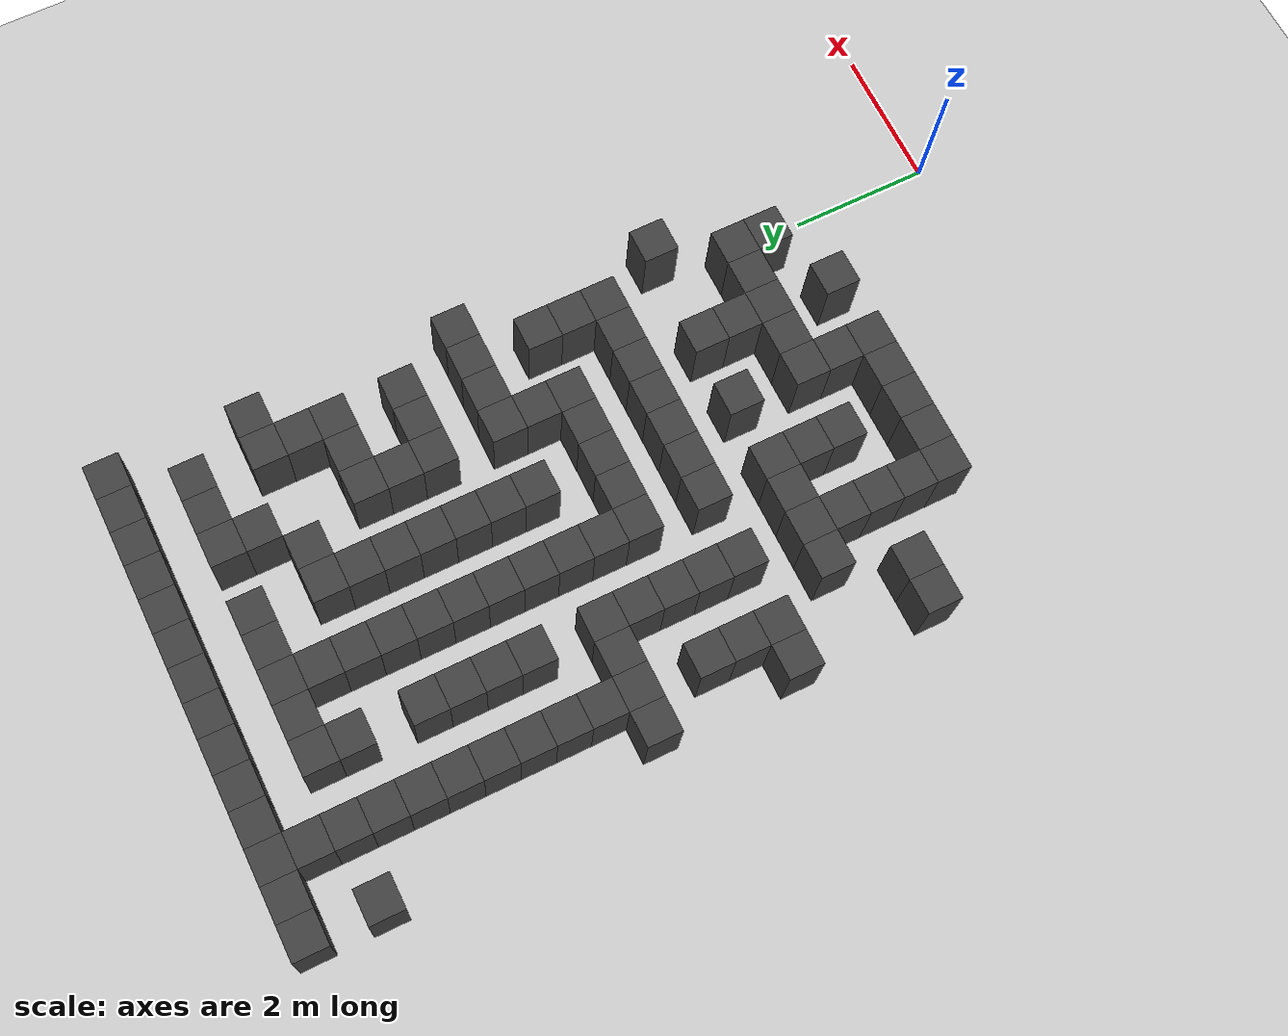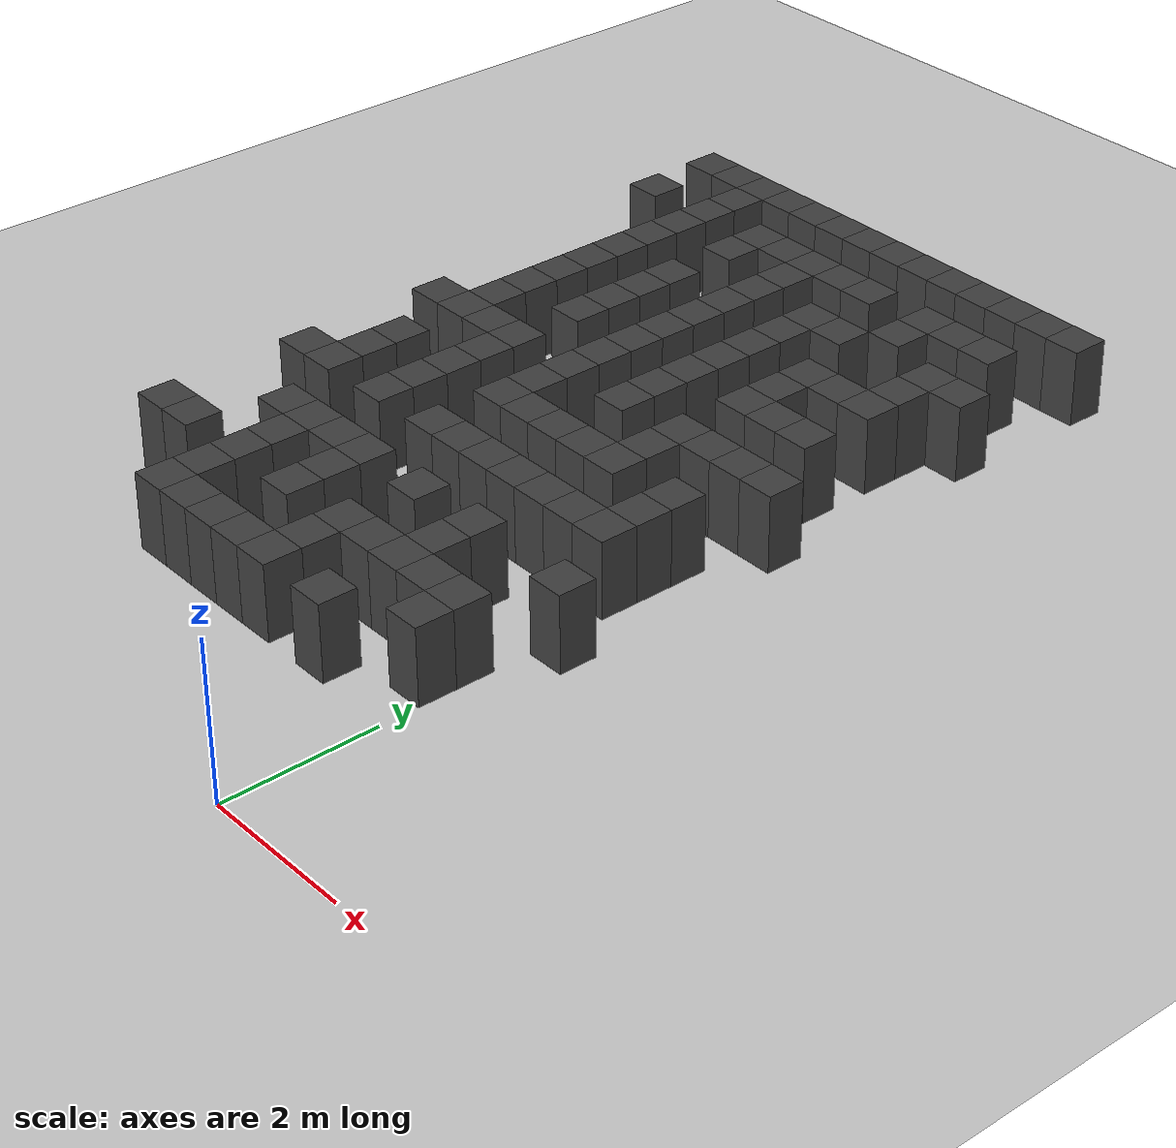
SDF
<sdf version="1.7">
 <world name="map_16603">
  <model name="ground_plane">
   <static>true</static>
   <link name="link">
    <collision name="collision">
     <geometry><plane><normal>0 0 1</normal><size>200 200</size></plane></geometry>
    </collision>
    <visual name="visual">
     <geometry><plane><normal>0 0 1</normal><size>200 200</size></plane></geometry>
     <material><ambient>0.8 0.8 0.8 1</ambient><diffuse>0.8 0.8 0.8 1</diffuse></material>
    </visual>
   </link>
  </model>
  <model name="maze_environment">
   <static>true</static>
   <link name="wall_12">
    <pose>-6.250 12.250 0.500 0 0 0</pose>
    <collision name="col"><geometry><box><size>0.5 0.5 1.0</size></box></geometry></collision>
    <visual name="vis">
     <geometry><box><size>0.5 0.5 1.0</size></box></geometry>
     <material><ambient>0.15 0.15 0.15 1</ambient><diffuse>0.25 0.25 0.25 1</diffuse></material>
    </visual>
   </link>
   <link name="wall_13">
    <pose>-5.750 12.250 0.500 0 0 0</pose>
    <collision name="col"><geometry><box><size>0.5 0.5 1.0</size></box></geometry></collision>
    <visual name="vis">
     <geometry><box><size>0.5 0.5 1.0</size></box></geometry>
     <material><ambient>0.15 0.15 0.15 1</ambient><diffuse>0.25 0.25 0.25 1</diffuse></material>
    </visual>
   </link>
   <link name="wall_14">
    <pose>-5.250 12.250 0.500 0 0 0</pose>
    <collision name="col"><geometry><box><size>0.5 0.5 1.0</size></box></geometry></collision>
    <visual name="vis">
     <geometry><box><size>0.5 0.5 1.0</size></box></geometry>
     <material><ambient>0.15 0.15 0.15 1</ambient><diffuse>0.25 0.25 0.25 1</diffuse></material>
    </visual>
   </link>
   <link name="wall_15">
    <pose>-4.750 12.250 0.500 0 0 0</pose>
    <collision name="col"><geometry><box><size>0.5 0.5 1.0</size></box></geometry></collision>
    <visual name="vis">
     <geometry><box><size>0.5 0.5 1.0</size></box></geometry>
     <material><ambient>0.15 0.15 0.15 1</ambient><diffuse>0.25 0.25 0.25 1</diffuse></material>
    </visual>
   </link>
   <link name="wall_16">
    <pose>-4.250 12.250 0.500 0 0 0</pose>
    <collision name="col"><geometry><box><size>0.5 0.5 1.0</size></box></geometry></collision>
    <visual name="vis">
     <geometry><box><size>0.5 0.5 1.0</size></box></geometry>
     <material><ambient>0.15 0.15 0.15 1</ambient><diffuse>0.25 0.25 0.25 1</diffuse></material>
    </visual>
   </link>
   <link name="wall_17">
    <pose>-3.750 12.250 0.500 0 0 0</pose>
    <collision name="col"><geometry><box><size>0.5 0.5 1.0</size></box></geometry></collision>
    <visual name="vis">
     <geometry><box><size>0.5 0.5 1.0</size></box></geometry>
     <material><ambient>0.15 0.15 0.15 1</ambient><diffuse>0.25 0.25 0.25 1</diffuse></material>
    </visual>
   </link>
   <link name="wall_18">
    <pose>-3.250 12.250 0.500 0 0 0</pose>
    <collision name="col"><geometry><box><size>0.5 0.5 1.0</size></box></geometry></collision>
    <visual name="vis">
     <geometry><box><size>0.5 0.5 1.0</size></box></geometry>
     <material><ambient>0.15 0.15 0.15 1</ambient><diffuse>0.25 0.25 0.25 1</diffuse></material>
    </visual>
   </link>
   <link name="wall_19">
    <pose>-2.750 12.250 0.500 0 0 0</pose>
    <collision name="col"><geometry><box><size>0.5 0.5 1.0</size></box></geometry></collision>
    <visual name="vis">
     <geometry><box><size>0.5 0.5 1.0</size></box></geometry>
     <material><ambient>0.15 0.15 0.15 1</ambient><diffuse>0.25 0.25 0.25 1</diffuse></material>
    </visual>
   </link>
   <link name="wall_20">
    <pose>-2.250 12.250 0.500 0 0 0</pose>
    <collision name="col"><geometry><box><size>0.5 0.5 1.0</size></box></geometry></collision>
    <visual name="vis">
     <geometry><box><size>0.5 0.5 1.0</size></box></geometry>
     <material><ambient>0.15 0.15 0.15 1</ambient><diffuse>0.25 0.25 0.25 1</diffuse></material>
    </visual>
   </link>
   <link name="wall_21">
    <pose>-1.750 12.250 0.500 0 0 0</pose>
    <collision name="col"><geometry><box><size>0.5 0.5 1.0</size></box></geometry></collision>
    <visual name="vis">
     <geometry><box><size>0.5 0.5 1.0</size></box></geometry>
     <material><ambient>0.15 0.15 0.15 1</ambient><diffuse>0.25 0.25 0.25 1</diffuse></material>
    </visual>
   </link>
   <link name="wall_22">
    <pose>-1.250 12.250 0.500 0 0 0</pose>
    <collision name="col"><geometry><box><size>0.5 0.5 1.0</size></box></geometry></collision>
    <visual name="vis">
     <geometry><box><size>0.5 0.5 1.0</size></box></geometry>
     <material><ambient>0.15 0.15 0.15 1</ambient><diffuse>0.25 0.25 0.25 1</diffuse></material>
    </visual>
   </link>
   <link name="wall_23">
    <pose>-0.750 12.250 0.500 0 0 0</pose>
    <collision name="col"><geometry><box><size>0.5 0.5 1.0</size></box></geometry></collision>
    <visual name="vis">
     <geometry><box><size>0.5 0.5 1.0</size></box></geometry>
     <material><ambient>0.15 0.15 0.15 1</ambient><diffuse>0.25 0.25 0.25 1</diffuse></material>
    </visual>
   </link>
   <link name="wall_24">
    <pose>-0.250 12.250 0.500 0 0 0</pose>
    <collision name="col"><geometry><box><size>0.5 0.5 1.0</size></box></geometry></collision>
    <visual name="vis">
     <geometry><box><size>0.5 0.5 1.0</size></box></geometry>
     <material><ambient>0.15 0.15 0.15 1</ambient><diffuse>0.25 0.25 0.25 1</diffuse></material>
    </visual>
   </link>
   <link name="wall_25">
    <pose>0.250 12.250 0.500 0 0 0</pose>
    <collision name="col"><geometry><box><size>0.5 0.5 1.0</size></box></geometry></collision>
    <visual name="vis">
     <geometry><box><size>0.5 0.5 1.0</size></box></geometry>
     <material><ambient>0.15 0.15 0.15 1</ambient><diffuse>0.25 0.25 0.25 1</diffuse></material>
    </visual>
   </link>
   <link name="wall_53">
    <pose>-5.250 11.750 0.500 0 0 0</pose>
    <collision name="col"><geometry><box><size>0.5 0.5 1.0</size></box></geometry></collision>
    <visual name="vis">
     <geometry><box><size>0.5 0.5 1.0</size></box></geometry>
     <material><ambient>0.15 0.15 0.15 1</ambient><diffuse>0.25 0.25 0.25 1</diffuse></material>
    </visual>
   </link>
   <link name="wall_65">
    <pose>-6.250 11.250 0.500 0 0 0</pose>
    <collision name="col"><geometry><box><size>0.5 0.5 1.0</size></box></geometry></collision>
    <visual name="vis">
     <geometry><box><size>0.5 0.5 1.0</size></box></geometry>
     <material><ambient>0.15 0.15 0.15 1</ambient><diffuse>0.25 0.25 0.25 1</diffuse></material>
    </visual>
   </link>
   <link name="wall_66">
    <pose>-5.250 11.250 0.500 0 0 0</pose>
    <collision name="col"><geometry><box><size>0.5 0.5 1.0</size></box></geometry></collision>
    <visual name="vis">
     <geometry><box><size>0.5 0.5 1.0</size></box></geometry>
     <material><ambient>0.15 0.15 0.15 1</ambient><diffuse>0.25 0.25 0.25 1</diffuse></material>
    </visual>
   </link>
   <link name="wall_67">
    <pose>-4.250 11.250 0.500 0 0 0</pose>
    <collision name="col"><geometry><box><size>0.5 0.5 1.0</size></box></geometry></collision>
    <visual name="vis">
     <geometry><box><size>0.5 0.5 1.0</size></box></geometry>
     <material><ambient>0.15 0.15 0.15 1</ambient><diffuse>0.25 0.25 0.25 1</diffuse></material>
    </visual>
   </link>
   <link name="wall_68">
    <pose>-3.750 11.250 0.500 0 0 0</pose>
    <collision name="col"><geometry><box><size>0.5 0.5 1.0</size></box></geometry></collision>
    <visual name="vis">
     <geometry><box><size>0.5 0.5 1.0</size></box></geometry>
     <material><ambient>0.15 0.15 0.15 1</ambient><diffuse>0.25 0.25 0.25 1</diffuse></material>
    </visual>
   </link>
   <link name="wall_69">
    <pose>-3.250 11.250 0.500 0 0 0</pose>
    <collision name="col"><geometry><box><size>0.5 0.5 1.0</size></box></geometry></collision>
    <visual name="vis">
     <geometry><box><size>0.5 0.5 1.0</size></box></geometry>
     <material><ambient>0.15 0.15 0.15 1</ambient><diffuse>0.25 0.25 0.25 1</diffuse></material>
    </visual>
   </link>
   <link name="wall_70">
    <pose>-2.750 11.250 0.500 0 0 0</pose>
    <collision name="col"><geometry><box><size>0.5 0.5 1.0</size></box></geometry></collision>
    <visual name="vis">
     <geometry><box><size>0.5 0.5 1.0</size></box></geometry>
     <material><ambient>0.15 0.15 0.15 1</ambient><diffuse>0.25 0.25 0.25 1</diffuse></material>
    </visual>
   </link>
   <link name="wall_71">
    <pose>-2.250 11.250 0.500 0 0 0</pose>
    <collision name="col"><geometry><box><size>0.5 0.5 1.0</size></box></geometry></collision>
    <visual name="vis">
     <geometry><box><size>0.5 0.5 1.0</size></box></geometry>
     <material><ambient>0.15 0.15 0.15 1</ambient><diffuse>0.25 0.25 0.25 1</diffuse></material>
    </visual>
   </link>
   <link name="wall_72">
    <pose>-1.250 11.250 0.500 0 0 0</pose>
    <collision name="col"><geometry><box><size>0.5 0.5 1.0</size></box></geometry></collision>
    <visual name="vis">
     <geometry><box><size>0.5 0.5 1.0</size></box></geometry>
     <material><ambient>0.15 0.15 0.15 1</ambient><diffuse>0.25 0.25 0.25 1</diffuse></material>
    </visual>
   </link>
   <link name="wall_73">
    <pose>-0.750 11.250 0.500 0 0 0</pose>
    <collision name="col"><geometry><box><size>0.5 0.5 1.0</size></box></geometry></collision>
    <visual name="vis">
     <geometry><box><size>0.5 0.5 1.0</size></box></geometry>
     <material><ambient>0.15 0.15 0.15 1</ambient><diffuse>0.25 0.25 0.25 1</diffuse></material>
    </visual>
   </link>
   <link name="wall_74">
    <pose>-0.250 11.250 0.500 0 0 0</pose>
    <collision name="col"><geometry><box><size>0.5 0.5 1.0</size></box></geometry></collision>
    <visual name="vis">
     <geometry><box><size>0.5 0.5 1.0</size></box></geometry>
     <material><ambient>0.15 0.15 0.15 1</ambient><diffuse>0.25 0.25 0.25 1</diffuse></material>
    </visual>
   </link>
   <link name="wall_97">
    <pose>-5.250 10.750 0.500 0 0 0</pose>
    <collision name="col"><geometry><box><size>0.5 0.5 1.0</size></box></geometry></collision>
    <visual name="vis">
     <geometry><box><size>0.5 0.5 1.0</size></box></geometry>
     <material><ambient>0.15 0.15 0.15 1</ambient><diffuse>0.25 0.25 0.25 1</diffuse></material>
    </visual>
   </link>
   <link name="wall_98">
    <pose>-4.250 10.750 0.500 0 0 0</pose>
    <collision name="col"><geometry><box><size>0.5 0.5 1.0</size></box></geometry></collision>
    <visual name="vis">
     <geometry><box><size>0.5 0.5 1.0</size></box></geometry>
     <material><ambient>0.15 0.15 0.15 1</ambient><diffuse>0.25 0.25 0.25 1</diffuse></material>
    </visual>
   </link>
   <link name="wall_99">
    <pose>-3.250 10.750 0.500 0 0 0</pose>
    <collision name="col"><geometry><box><size>0.5 0.5 1.0</size></box></geometry></collision>
    <visual name="vis">
     <geometry><box><size>0.5 0.5 1.0</size></box></geometry>
     <material><ambient>0.15 0.15 0.15 1</ambient><diffuse>0.25 0.25 0.25 1</diffuse></material>
    </visual>
   </link>
   <link name="wall_100">
    <pose>-1.250 10.750 0.500 0 0 0</pose>
    <collision name="col"><geometry><box><size>0.5 0.5 1.0</size></box></geometry></collision>
    <visual name="vis">
     <geometry><box><size>0.5 0.5 1.0</size></box></geometry>
     <material><ambient>0.15 0.15 0.15 1</ambient><diffuse>0.25 0.25 0.25 1</diffuse></material>
    </visual>
   </link>
   <link name="wall_114">
    <pose>-5.250 10.250 0.500 0 0 0</pose>
    <collision name="col"><geometry><box><size>0.5 0.5 1.0</size></box></geometry></collision>
    <visual name="vis">
     <geometry><box><size>0.5 0.5 1.0</size></box></geometry>
     <material><ambient>0.15 0.15 0.15 1</ambient><diffuse>0.25 0.25 0.25 1</diffuse></material>
    </visual>
   </link>
   <link name="wall_115">
    <pose>-3.250 10.250 0.500 0 0 0</pose>
    <collision name="col"><geometry><box><size>0.5 0.5 1.0</size></box></geometry></collision>
    <visual name="vis">
     <geometry><box><size>0.5 0.5 1.0</size></box></geometry>
     <material><ambient>0.15 0.15 0.15 1</ambient><diffuse>0.25 0.25 0.25 1</diffuse></material>
    </visual>
   </link>
   <link name="wall_116">
    <pose>-2.250 10.250 0.500 0 0 0</pose>
    <collision name="col"><geometry><box><size>0.5 0.5 1.0</size></box></geometry></collision>
    <visual name="vis">
     <geometry><box><size>0.5 0.5 1.0</size></box></geometry>
     <material><ambient>0.15 0.15 0.15 1</ambient><diffuse>0.25 0.25 0.25 1</diffuse></material>
    </visual>
   </link>
   <link name="wall_117">
    <pose>-1.750 10.250 0.500 0 0 0</pose>
    <collision name="col"><geometry><box><size>0.5 0.5 1.0</size></box></geometry></collision>
    <visual name="vis">
     <geometry><box><size>0.5 0.5 1.0</size></box></geometry>
     <material><ambient>0.15 0.15 0.15 1</ambient><diffuse>0.25 0.25 0.25 1</diffuse></material>
    </visual>
   </link>
   <link name="wall_118">
    <pose>-0.250 10.250 0.500 0 0 0</pose>
    <collision name="col"><geometry><box><size>0.5 0.5 1.0</size></box></geometry></collision>
    <visual name="vis">
     <geometry><box><size>0.5 0.5 1.0</size></box></geometry>
     <material><ambient>0.15 0.15 0.15 1</ambient><diffuse>0.25 0.25 0.25 1</diffuse></material>
    </visual>
   </link>
   <link name="wall_119">
    <pose>0.250 10.250 0.500 0 0 0</pose>
    <collision name="col"><geometry><box><size>0.5 0.5 1.0</size></box></geometry></collision>
    <visual name="vis">
     <geometry><box><size>0.5 0.5 1.0</size></box></geometry>
     <material><ambient>0.15 0.15 0.15 1</ambient><diffuse>0.25 0.25 0.25 1</diffuse></material>
    </visual>
   </link>
   <link name="wall_141">
    <pose>-5.250 9.750 0.500 0 0 0</pose>
    <collision name="col"><geometry><box><size>0.5 0.5 1.0</size></box></geometry></collision>
    <visual name="vis">
     <geometry><box><size>0.5 0.5 1.0</size></box></geometry>
     <material><ambient>0.15 0.15 0.15 1</ambient><diffuse>0.25 0.25 0.25 1</diffuse></material>
    </visual>
   </link>
   <link name="wall_142">
    <pose>-4.250 9.750 0.500 0 0 0</pose>
    <collision name="col"><geometry><box><size>0.5 0.5 1.0</size></box></geometry></collision>
    <visual name="vis">
     <geometry><box><size>0.5 0.5 1.0</size></box></geometry>
     <material><ambient>0.15 0.15 0.15 1</ambient><diffuse>0.25 0.25 0.25 1</diffuse></material>
    </visual>
   </link>
   <link name="wall_143">
    <pose>-3.250 9.750 0.500 0 0 0</pose>
    <collision name="col"><geometry><box><size>0.5 0.5 1.0</size></box></geometry></collision>
    <visual name="vis">
     <geometry><box><size>0.5 0.5 1.0</size></box></geometry>
     <material><ambient>0.15 0.15 0.15 1</ambient><diffuse>0.25 0.25 0.25 1</diffuse></material>
    </visual>
   </link>
   <link name="wall_144">
    <pose>-2.250 9.750 0.500 0 0 0</pose>
    <collision name="col"><geometry><box><size>0.5 0.5 1.0</size></box></geometry></collision>
    <visual name="vis">
     <geometry><box><size>0.5 0.5 1.0</size></box></geometry>
     <material><ambient>0.15 0.15 0.15 1</ambient><diffuse>0.25 0.25 0.25 1</diffuse></material>
    </visual>
   </link>
   <link name="wall_145">
    <pose>-0.250 9.750 0.500 0 0 0</pose>
    <collision name="col"><geometry><box><size>0.5 0.5 1.0</size></box></geometry></collision>
    <visual name="vis">
     <geometry><box><size>0.5 0.5 1.0</size></box></geometry>
     <material><ambient>0.15 0.15 0.15 1</ambient><diffuse>0.25 0.25 0.25 1</diffuse></material>
    </visual>
   </link>
   <link name="wall_161">
    <pose>-5.250 9.250 0.500 0 0 0</pose>
    <collision name="col"><geometry><box><size>0.5 0.5 1.0</size></box></geometry></collision>
    <visual name="vis">
     <geometry><box><size>0.5 0.5 1.0</size></box></geometry>
     <material><ambient>0.15 0.15 0.15 1</ambient><diffuse>0.25 0.25 0.25 1</diffuse></material>
    </visual>
   </link>
   <link name="wall_162">
    <pose>-4.250 9.250 0.500 0 0 0</pose>
    <collision name="col"><geometry><box><size>0.5 0.5 1.0</size></box></geometry></collision>
    <visual name="vis">
     <geometry><box><size>0.5 0.5 1.0</size></box></geometry>
     <material><ambient>0.15 0.15 0.15 1</ambient><diffuse>0.25 0.25 0.25 1</diffuse></material>
    </visual>
   </link>
   <link name="wall_163">
    <pose>-3.250 9.250 0.500 0 0 0</pose>
    <collision name="col"><geometry><box><size>0.5 0.5 1.0</size></box></geometry></collision>
    <visual name="vis">
     <geometry><box><size>0.5 0.5 1.0</size></box></geometry>
     <material><ambient>0.15 0.15 0.15 1</ambient><diffuse>0.25 0.25 0.25 1</diffuse></material>
    </visual>
   </link>
   <link name="wall_164">
    <pose>-2.250 9.250 0.500 0 0 0</pose>
    <collision name="col"><geometry><box><size>0.5 0.5 1.0</size></box></geometry></collision>
    <visual name="vis">
     <geometry><box><size>0.5 0.5 1.0</size></box></geometry>
     <material><ambient>0.15 0.15 0.15 1</ambient><diffuse>0.25 0.25 0.25 1</diffuse></material>
    </visual>
   </link>
   <link name="wall_165">
    <pose>-1.250 9.250 0.500 0 0 0</pose>
    <collision name="col"><geometry><box><size>0.5 0.5 1.0</size></box></geometry></collision>
    <visual name="vis">
     <geometry><box><size>0.5 0.5 1.0</size></box></geometry>
     <material><ambient>0.15 0.15 0.15 1</ambient><diffuse>0.25 0.25 0.25 1</diffuse></material>
    </visual>
   </link>
   <link name="wall_166">
    <pose>-0.750 9.250 0.500 0 0 0</pose>
    <collision name="col"><geometry><box><size>0.5 0.5 1.0</size></box></geometry></collision>
    <visual name="vis">
     <geometry><box><size>0.5 0.5 1.0</size></box></geometry>
     <material><ambient>0.15 0.15 0.15 1</ambient><diffuse>0.25 0.25 0.25 1</diffuse></material>
    </visual>
   </link>
   <link name="wall_167">
    <pose>-0.250 9.250 0.500 0 0 0</pose>
    <collision name="col"><geometry><box><size>0.5 0.5 1.0</size></box></geometry></collision>
    <visual name="vis">
     <geometry><box><size>0.5 0.5 1.0</size></box></geometry>
     <material><ambient>0.15 0.15 0.15 1</ambient><diffuse>0.25 0.25 0.25 1</diffuse></material>
    </visual>
   </link>
   <link name="wall_188">
    <pose>-5.250 8.750 0.500 0 0 0</pose>
    <collision name="col"><geometry><box><size>0.5 0.5 1.0</size></box></geometry></collision>
    <visual name="vis">
     <geometry><box><size>0.5 0.5 1.0</size></box></geometry>
     <material><ambient>0.15 0.15 0.15 1</ambient><diffuse>0.25 0.25 0.25 1</diffuse></material>
    </visual>
   </link>
   <link name="wall_189">
    <pose>-4.250 8.750 0.500 0 0 0</pose>
    <collision name="col"><geometry><box><size>0.5 0.5 1.0</size></box></geometry></collision>
    <visual name="vis">
     <geometry><box><size>0.5 0.5 1.0</size></box></geometry>
     <material><ambient>0.15 0.15 0.15 1</ambient><diffuse>0.25 0.25 0.25 1</diffuse></material>
    </visual>
   </link>
   <link name="wall_190">
    <pose>-3.250 8.750 0.500 0 0 0</pose>
    <collision name="col"><geometry><box><size>0.5 0.5 1.0</size></box></geometry></collision>
    <visual name="vis">
     <geometry><box><size>0.5 0.5 1.0</size></box></geometry>
     <material><ambient>0.15 0.15 0.15 1</ambient><diffuse>0.25 0.25 0.25 1</diffuse></material>
    </visual>
   </link>
   <link name="wall_191">
    <pose>-2.250 8.750 0.500 0 0 0</pose>
    <collision name="col"><geometry><box><size>0.5 0.5 1.0</size></box></geometry></collision>
    <visual name="vis">
     <geometry><box><size>0.5 0.5 1.0</size></box></geometry>
     <material><ambient>0.15 0.15 0.15 1</ambient><diffuse>0.25 0.25 0.25 1</diffuse></material>
    </visual>
   </link>
   <link name="wall_192">
    <pose>-1.250 8.750 0.500 0 0 0</pose>
    <collision name="col"><geometry><box><size>0.5 0.5 1.0</size></box></geometry></collision>
    <visual name="vis">
     <geometry><box><size>0.5 0.5 1.0</size></box></geometry>
     <material><ambient>0.15 0.15 0.15 1</ambient><diffuse>0.25 0.25 0.25 1</diffuse></material>
    </visual>
   </link>
   <link name="wall_209">
    <pose>-5.250 8.250 0.500 0 0 0</pose>
    <collision name="col"><geometry><box><size>0.5 0.5 1.0</size></box></geometry></collision>
    <visual name="vis">
     <geometry><box><size>0.5 0.5 1.0</size></box></geometry>
     <material><ambient>0.15 0.15 0.15 1</ambient><diffuse>0.25 0.25 0.25 1</diffuse></material>
    </visual>
   </link>
   <link name="wall_210">
    <pose>-4.250 8.250 0.500 0 0 0</pose>
    <collision name="col"><geometry><box><size>0.5 0.5 1.0</size></box></geometry></collision>
    <visual name="vis">
     <geometry><box><size>0.5 0.5 1.0</size></box></geometry>
     <material><ambient>0.15 0.15 0.15 1</ambient><diffuse>0.25 0.25 0.25 1</diffuse></material>
    </visual>
   </link>
   <link name="wall_211">
    <pose>-3.250 8.250 0.500 0 0 0</pose>
    <collision name="col"><geometry><box><size>0.5 0.5 1.0</size></box></geometry></collision>
    <visual name="vis">
     <geometry><box><size>0.5 0.5 1.0</size></box></geometry>
     <material><ambient>0.15 0.15 0.15 1</ambient><diffuse>0.25 0.25 0.25 1</diffuse></material>
    </visual>
   </link>
   <link name="wall_212">
    <pose>-2.250 8.250 0.500 0 0 0</pose>
    <collision name="col"><geometry><box><size>0.5 0.5 1.0</size></box></geometry></collision>
    <visual name="vis">
     <geometry><box><size>0.5 0.5 1.0</size></box></geometry>
     <material><ambient>0.15 0.15 0.15 1</ambient><diffuse>0.25 0.25 0.25 1</diffuse></material>
    </visual>
   </link>
   <link name="wall_213">
    <pose>-1.250 8.250 0.500 0 0 0</pose>
    <collision name="col"><geometry><box><size>0.5 0.5 1.0</size></box></geometry></collision>
    <visual name="vis">
     <geometry><box><size>0.5 0.5 1.0</size></box></geometry>
     <material><ambient>0.15 0.15 0.15 1</ambient><diffuse>0.25 0.25 0.25 1</diffuse></material>
    </visual>
   </link>
   <link name="wall_214">
    <pose>-0.750 8.250 0.500 0 0 0</pose>
    <collision name="col"><geometry><box><size>0.5 0.5 1.0</size></box></geometry></collision>
    <visual name="vis">
     <geometry><box><size>0.5 0.5 1.0</size></box></geometry>
     <material><ambient>0.15 0.15 0.15 1</ambient><diffuse>0.25 0.25 0.25 1</diffuse></material>
    </visual>
   </link>
   <link name="wall_215">
    <pose>-0.250 8.250 0.500 0 0 0</pose>
    <collision name="col"><geometry><box><size>0.5 0.5 1.0</size></box></geometry></collision>
    <visual name="vis">
     <geometry><box><size>0.5 0.5 1.0</size></box></geometry>
     <material><ambient>0.15 0.15 0.15 1</ambient><diffuse>0.25 0.25 0.25 1</diffuse></material>
    </visual>
   </link>
   <link name="wall_234">
    <pose>-5.250 7.750 0.500 0 0 0</pose>
    <collision name="col"><geometry><box><size>0.5 0.5 1.0</size></box></geometry></collision>
    <visual name="vis">
     <geometry><box><size>0.5 0.5 1.0</size></box></geometry>
     <material><ambient>0.15 0.15 0.15 1</ambient><diffuse>0.25 0.25 0.25 1</diffuse></material>
    </visual>
   </link>
   <link name="wall_235">
    <pose>-3.250 7.750 0.500 0 0 0</pose>
    <collision name="col"><geometry><box><size>0.5 0.5 1.0</size></box></geometry></collision>
    <visual name="vis">
     <geometry><box><size>0.5 0.5 1.0</size></box></geometry>
     <material><ambient>0.15 0.15 0.15 1</ambient><diffuse>0.25 0.25 0.25 1</diffuse></material>
    </visual>
   </link>
   <link name="wall_236">
    <pose>-2.250 7.750 0.500 0 0 0</pose>
    <collision name="col"><geometry><box><size>0.5 0.5 1.0</size></box></geometry></collision>
    <visual name="vis">
     <geometry><box><size>0.5 0.5 1.0</size></box></geometry>
     <material><ambient>0.15 0.15 0.15 1</ambient><diffuse>0.25 0.25 0.25 1</diffuse></material>
    </visual>
   </link>
   <link name="wall_256">
    <pose>-5.750 7.250 0.500 0 0 0</pose>
    <collision name="col"><geometry><box><size>0.5 0.5 1.0</size></box></geometry></collision>
    <visual name="vis">
     <geometry><box><size>0.5 0.5 1.0</size></box></geometry>
     <material><ambient>0.15 0.15 0.15 1</ambient><diffuse>0.25 0.25 0.25 1</diffuse></material>
    </visual>
   </link>
   <link name="wall_257">
    <pose>-5.250 7.250 0.500 0 0 0</pose>
    <collision name="col"><geometry><box><size>0.5 0.5 1.0</size></box></geometry></collision>
    <visual name="vis">
     <geometry><box><size>0.5 0.5 1.0</size></box></geometry>
     <material><ambient>0.15 0.15 0.15 1</ambient><diffuse>0.25 0.25 0.25 1</diffuse></material>
    </visual>
   </link>
   <link name="wall_258">
    <pose>-4.750 7.250 0.500 0 0 0</pose>
    <collision name="col"><geometry><box><size>0.5 0.5 1.0</size></box></geometry></collision>
    <visual name="vis">
     <geometry><box><size>0.5 0.5 1.0</size></box></geometry>
     <material><ambient>0.15 0.15 0.15 1</ambient><diffuse>0.25 0.25 0.25 1</diffuse></material>
    </visual>
   </link>
   <link name="wall_259">
    <pose>-4.250 7.250 0.500 0 0 0</pose>
    <collision name="col"><geometry><box><size>0.5 0.5 1.0</size></box></geometry></collision>
    <visual name="vis">
     <geometry><box><size>0.5 0.5 1.0</size></box></geometry>
     <material><ambient>0.15 0.15 0.15 1</ambient><diffuse>0.25 0.25 0.25 1</diffuse></material>
    </visual>
   </link>
   <link name="wall_260">
    <pose>-3.250 7.250 0.500 0 0 0</pose>
    <collision name="col"><geometry><box><size>0.5 0.5 1.0</size></box></geometry></collision>
    <visual name="vis">
     <geometry><box><size>0.5 0.5 1.0</size></box></geometry>
     <material><ambient>0.15 0.15 0.15 1</ambient><diffuse>0.25 0.25 0.25 1</diffuse></material>
    </visual>
   </link>
   <link name="wall_261">
    <pose>-2.250 7.250 0.500 0 0 0</pose>
    <collision name="col"><geometry><box><size>0.5 0.5 1.0</size></box></geometry></collision>
    <visual name="vis">
     <geometry><box><size>0.5 0.5 1.0</size></box></geometry>
     <material><ambient>0.15 0.15 0.15 1</ambient><diffuse>0.25 0.25 0.25 1</diffuse></material>
    </visual>
   </link>
   <link name="wall_262">
    <pose>-1.250 7.250 0.500 0 0 0</pose>
    <collision name="col"><geometry><box><size>0.5 0.5 1.0</size></box></geometry></collision>
    <visual name="vis">
     <geometry><box><size>0.5 0.5 1.0</size></box></geometry>
     <material><ambient>0.15 0.15 0.15 1</ambient><diffuse>0.25 0.25 0.25 1</diffuse></material>
    </visual>
   </link>
   <link name="wall_263">
    <pose>-0.750 7.250 0.500 0 0 0</pose>
    <collision name="col"><geometry><box><size>0.5 0.5 1.0</size></box></geometry></collision>
    <visual name="vis">
     <geometry><box><size>0.5 0.5 1.0</size></box></geometry>
     <material><ambient>0.15 0.15 0.15 1</ambient><diffuse>0.25 0.25 0.25 1</diffuse></material>
    </visual>
   </link>
   <link name="wall_264">
    <pose>-0.250 7.250 0.500 0 0 0</pose>
    <collision name="col"><geometry><box><size>0.5 0.5 1.0</size></box></geometry></collision>
    <visual name="vis">
     <geometry><box><size>0.5 0.5 1.0</size></box></geometry>
     <material><ambient>0.15 0.15 0.15 1</ambient><diffuse>0.25 0.25 0.25 1</diffuse></material>
    </visual>
   </link>
   <link name="wall_265">
    <pose>0.250 7.250 0.500 0 0 0</pose>
    <collision name="col"><geometry><box><size>0.5 0.5 1.0</size></box></geometry></collision>
    <visual name="vis">
     <geometry><box><size>0.5 0.5 1.0</size></box></geometry>
     <material><ambient>0.15 0.15 0.15 1</ambient><diffuse>0.25 0.25 0.25 1</diffuse></material>
    </visual>
   </link>
   <link name="wall_289">
    <pose>-4.250 6.750 0.500 0 0 0</pose>
    <collision name="col"><geometry><box><size>0.5 0.5 1.0</size></box></geometry></collision>
    <visual name="vis">
     <geometry><box><size>0.5 0.5 1.0</size></box></geometry>
     <material><ambient>0.15 0.15 0.15 1</ambient><diffuse>0.25 0.25 0.25 1</diffuse></material>
    </visual>
   </link>
   <link name="wall_290">
    <pose>-3.250 6.750 0.500 0 0 0</pose>
    <collision name="col"><geometry><box><size>0.5 0.5 1.0</size></box></geometry></collision>
    <visual name="vis">
     <geometry><box><size>0.5 0.5 1.0</size></box></geometry>
     <material><ambient>0.15 0.15 0.15 1</ambient><diffuse>0.25 0.25 0.25 1</diffuse></material>
    </visual>
   </link>
   <link name="wall_291">
    <pose>-1.250 6.750 0.500 0 0 0</pose>
    <collision name="col"><geometry><box><size>0.5 0.5 1.0</size></box></geometry></collision>
    <visual name="vis">
     <geometry><box><size>0.5 0.5 1.0</size></box></geometry>
     <material><ambient>0.15 0.15 0.15 1</ambient><diffuse>0.25 0.25 0.25 1</diffuse></material>
    </visual>
   </link>
   <link name="wall_308">
    <pose>-5.250 6.250 0.500 0 0 0</pose>
    <collision name="col"><geometry><box><size>0.5 0.5 1.0</size></box></geometry></collision>
    <visual name="vis">
     <geometry><box><size>0.5 0.5 1.0</size></box></geometry>
     <material><ambient>0.15 0.15 0.15 1</ambient><diffuse>0.25 0.25 0.25 1</diffuse></material>
    </visual>
   </link>
   <link name="wall_309">
    <pose>-4.250 6.250 0.500 0 0 0</pose>
    <collision name="col"><geometry><box><size>0.5 0.5 1.0</size></box></geometry></collision>
    <visual name="vis">
     <geometry><box><size>0.5 0.5 1.0</size></box></geometry>
     <material><ambient>0.15 0.15 0.15 1</ambient><diffuse>0.25 0.25 0.25 1</diffuse></material>
    </visual>
   </link>
   <link name="wall_310">
    <pose>-3.250 6.250 0.500 0 0 0</pose>
    <collision name="col"><geometry><box><size>0.5 0.5 1.0</size></box></geometry></collision>
    <visual name="vis">
     <geometry><box><size>0.5 0.5 1.0</size></box></geometry>
     <material><ambient>0.15 0.15 0.15 1</ambient><diffuse>0.25 0.25 0.25 1</diffuse></material>
    </visual>
   </link>
   <link name="wall_311">
    <pose>-2.750 6.250 0.500 0 0 0</pose>
    <collision name="col"><geometry><box><size>0.5 0.5 1.0</size></box></geometry></collision>
    <visual name="vis">
     <geometry><box><size>0.5 0.5 1.0</size></box></geometry>
     <material><ambient>0.15 0.15 0.15 1</ambient><diffuse>0.25 0.25 0.25 1</diffuse></material>
    </visual>
   </link>
   <link name="wall_312">
    <pose>-2.250 6.250 0.500 0 0 0</pose>
    <collision name="col"><geometry><box><size>0.5 0.5 1.0</size></box></geometry></collision>
    <visual name="vis">
     <geometry><box><size>0.5 0.5 1.0</size></box></geometry>
     <material><ambient>0.15 0.15 0.15 1</ambient><diffuse>0.25 0.25 0.25 1</diffuse></material>
    </visual>
   </link>
   <link name="wall_313">
    <pose>-1.750 6.250 0.500 0 0 0</pose>
    <collision name="col"><geometry><box><size>0.5 0.5 1.0</size></box></geometry></collision>
    <visual name="vis">
     <geometry><box><size>0.5 0.5 1.0</size></box></geometry>
     <material><ambient>0.15 0.15 0.15 1</ambient><diffuse>0.25 0.25 0.25 1</diffuse></material>
    </visual>
   </link>
   <link name="wall_314">
    <pose>-1.250 6.250 0.500 0 0 0</pose>
    <collision name="col"><geometry><box><size>0.5 0.5 1.0</size></box></geometry></collision>
    <visual name="vis">
     <geometry><box><size>0.5 0.5 1.0</size></box></geometry>
     <material><ambient>0.15 0.15 0.15 1</ambient><diffuse>0.25 0.25 0.25 1</diffuse></material>
    </visual>
   </link>
   <link name="wall_315">
    <pose>-0.250 6.250 0.500 0 0 0</pose>
    <collision name="col"><geometry><box><size>0.5 0.5 1.0</size></box></geometry></collision>
    <visual name="vis">
     <geometry><box><size>0.5 0.5 1.0</size></box></geometry>
     <material><ambient>0.15 0.15 0.15 1</ambient><diffuse>0.25 0.25 0.25 1</diffuse></material>
    </visual>
   </link>
   <link name="wall_333">
    <pose>-5.250 5.750 0.500 0 0 0</pose>
    <collision name="col"><geometry><box><size>0.5 0.5 1.0</size></box></geometry></collision>
    <visual name="vis">
     <geometry><box><size>0.5 0.5 1.0</size></box></geometry>
     <material><ambient>0.15 0.15 0.15 1</ambient><diffuse>0.25 0.25 0.25 1</diffuse></material>
    </visual>
   </link>
   <link name="wall_334">
    <pose>-4.250 5.750 0.500 0 0 0</pose>
    <collision name="col"><geometry><box><size>0.5 0.5 1.0</size></box></geometry></collision>
    <visual name="vis">
     <geometry><box><size>0.5 0.5 1.0</size></box></geometry>
     <material><ambient>0.15 0.15 0.15 1</ambient><diffuse>0.25 0.25 0.25 1</diffuse></material>
    </visual>
   </link>
   <link name="wall_335">
    <pose>-0.250 5.750 0.500 0 0 0</pose>
    <collision name="col"><geometry><box><size>0.5 0.5 1.0</size></box></geometry></collision>
    <visual name="vis">
     <geometry><box><size>0.5 0.5 1.0</size></box></geometry>
     <material><ambient>0.15 0.15 0.15 1</ambient><diffuse>0.25 0.25 0.25 1</diffuse></material>
    </visual>
   </link>
   <link name="wall_355">
    <pose>-5.750 5.250 0.500 0 0 0</pose>
    <collision name="col"><geometry><box><size>0.5 0.5 1.0</size></box></geometry></collision>
    <visual name="vis">
     <geometry><box><size>0.5 0.5 1.0</size></box></geometry>
     <material><ambient>0.15 0.15 0.15 1</ambient><diffuse>0.25 0.25 0.25 1</diffuse></material>
    </visual>
   </link>
   <link name="wall_356">
    <pose>-5.250 5.250 0.500 0 0 0</pose>
    <collision name="col"><geometry><box><size>0.5 0.5 1.0</size></box></geometry></collision>
    <visual name="vis">
     <geometry><box><size>0.5 0.5 1.0</size></box></geometry>
     <material><ambient>0.15 0.15 0.15 1</ambient><diffuse>0.25 0.25 0.25 1</diffuse></material>
    </visual>
   </link>
   <link name="wall_357">
    <pose>-4.250 5.250 0.500 0 0 0</pose>
    <collision name="col"><geometry><box><size>0.5 0.5 1.0</size></box></geometry></collision>
    <visual name="vis">
     <geometry><box><size>0.5 0.5 1.0</size></box></geometry>
     <material><ambient>0.15 0.15 0.15 1</ambient><diffuse>0.25 0.25 0.25 1</diffuse></material>
    </visual>
   </link>
   <link name="wall_358">
    <pose>-3.250 5.250 0.500 0 0 0</pose>
    <collision name="col"><geometry><box><size>0.5 0.5 1.0</size></box></geometry></collision>
    <visual name="vis">
     <geometry><box><size>0.5 0.5 1.0</size></box></geometry>
     <material><ambient>0.15 0.15 0.15 1</ambient><diffuse>0.25 0.25 0.25 1</diffuse></material>
    </visual>
   </link>
   <link name="wall_359">
    <pose>-2.750 5.250 0.500 0 0 0</pose>
    <collision name="col"><geometry><box><size>0.5 0.5 1.0</size></box></geometry></collision>
    <visual name="vis">
     <geometry><box><size>0.5 0.5 1.0</size></box></geometry>
     <material><ambient>0.15 0.15 0.15 1</ambient><diffuse>0.25 0.25 0.25 1</diffuse></material>
    </visual>
   </link>
   <link name="wall_360">
    <pose>-2.250 5.250 0.500 0 0 0</pose>
    <collision name="col"><geometry><box><size>0.5 0.5 1.0</size></box></geometry></collision>
    <visual name="vis">
     <geometry><box><size>0.5 0.5 1.0</size></box></geometry>
     <material><ambient>0.15 0.15 0.15 1</ambient><diffuse>0.25 0.25 0.25 1</diffuse></material>
    </visual>
   </link>
   <link name="wall_361">
    <pose>-1.750 5.250 0.500 0 0 0</pose>
    <collision name="col"><geometry><box><size>0.5 0.5 1.0</size></box></geometry></collision>
    <visual name="vis">
     <geometry><box><size>0.5 0.5 1.0</size></box></geometry>
     <material><ambient>0.15 0.15 0.15 1</ambient><diffuse>0.25 0.25 0.25 1</diffuse></material>
    </visual>
   </link>
   <link name="wall_362">
    <pose>-1.250 5.250 0.500 0 0 0</pose>
    <collision name="col"><geometry><box><size>0.5 0.5 1.0</size></box></geometry></collision>
    <visual name="vis">
     <geometry><box><size>0.5 0.5 1.0</size></box></geometry>
     <material><ambient>0.15 0.15 0.15 1</ambient><diffuse>0.25 0.25 0.25 1</diffuse></material>
    </visual>
   </link>
   <link name="wall_363">
    <pose>-0.750 5.250 0.500 0 0 0</pose>
    <collision name="col"><geometry><box><size>0.5 0.5 1.0</size></box></geometry></collision>
    <visual name="vis">
     <geometry><box><size>0.5 0.5 1.0</size></box></geometry>
     <material><ambient>0.15 0.15 0.15 1</ambient><diffuse>0.25 0.25 0.25 1</diffuse></material>
    </visual>
   </link>
   <link name="wall_364">
    <pose>-0.250 5.250 0.500 0 0 0</pose>
    <collision name="col"><geometry><box><size>0.5 0.5 1.0</size></box></geometry></collision>
    <visual name="vis">
     <geometry><box><size>0.5 0.5 1.0</size></box></geometry>
     <material><ambient>0.15 0.15 0.15 1</ambient><diffuse>0.25 0.25 0.25 1</diffuse></material>
    </visual>
   </link>
   <link name="wall_403">
    <pose>-4.750 4.250 0.500 0 0 0</pose>
    <collision name="col"><geometry><box><size>0.5 0.5 1.0</size></box></geometry></collision>
    <visual name="vis">
     <geometry><box><size>0.5 0.5 1.0</size></box></geometry>
     <material><ambient>0.15 0.15 0.15 1</ambient><diffuse>0.25 0.25 0.25 1</diffuse></material>
    </visual>
   </link>
   <link name="wall_404">
    <pose>-4.250 4.250 0.500 0 0 0</pose>
    <collision name="col"><geometry><box><size>0.5 0.5 1.0</size></box></geometry></collision>
    <visual name="vis">
     <geometry><box><size>0.5 0.5 1.0</size></box></geometry>
     <material><ambient>0.15 0.15 0.15 1</ambient><diffuse>0.25 0.25 0.25 1</diffuse></material>
    </visual>
   </link>
   <link name="wall_405">
    <pose>-3.750 4.250 0.500 0 0 0</pose>
    <collision name="col"><geometry><box><size>0.5 0.5 1.0</size></box></geometry></collision>
    <visual name="vis">
     <geometry><box><size>0.5 0.5 1.0</size></box></geometry>
     <material><ambient>0.15 0.15 0.15 1</ambient><diffuse>0.25 0.25 0.25 1</diffuse></material>
    </visual>
   </link>
   <link name="wall_406">
    <pose>-3.250 4.250 0.500 0 0 0</pose>
    <collision name="col"><geometry><box><size>0.5 0.5 1.0</size></box></geometry></collision>
    <visual name="vis">
     <geometry><box><size>0.5 0.5 1.0</size></box></geometry>
     <material><ambient>0.15 0.15 0.15 1</ambient><diffuse>0.25 0.25 0.25 1</diffuse></material>
    </visual>
   </link>
   <link name="wall_407">
    <pose>-2.250 4.250 0.500 0 0 0</pose>
    <collision name="col"><geometry><box><size>0.5 0.5 1.0</size></box></geometry></collision>
    <visual name="vis">
     <geometry><box><size>0.5 0.5 1.0</size></box></geometry>
     <material><ambient>0.15 0.15 0.15 1</ambient><diffuse>0.25 0.25 0.25 1</diffuse></material>
    </visual>
   </link>
   <link name="wall_408">
    <pose>-1.250 4.250 0.500 0 0 0</pose>
    <collision name="col"><geometry><box><size>0.5 0.5 1.0</size></box></geometry></collision>
    <visual name="vis">
     <geometry><box><size>0.5 0.5 1.0</size></box></geometry>
     <material><ambient>0.15 0.15 0.15 1</ambient><diffuse>0.25 0.25 0.25 1</diffuse></material>
    </visual>
   </link>
   <link name="wall_409">
    <pose>0.250 4.250 0.500 0 0 0</pose>
    <collision name="col"><geometry><box><size>0.5 0.5 1.0</size></box></geometry></collision>
    <visual name="vis">
     <geometry><box><size>0.5 0.5 1.0</size></box></geometry>
     <material><ambient>0.15 0.15 0.15 1</ambient><diffuse>0.25 0.25 0.25 1</diffuse></material>
    </visual>
   </link>
   <link name="wall_428">
    <pose>-4.250 3.750 0.500 0 0 0</pose>
    <collision name="col"><geometry><box><size>0.5 0.5 1.0</size></box></geometry></collision>
    <visual name="vis">
     <geometry><box><size>0.5 0.5 1.0</size></box></geometry>
     <material><ambient>0.15 0.15 0.15 1</ambient><diffuse>0.25 0.25 0.25 1</diffuse></material>
    </visual>
   </link>
   <link name="wall_429">
    <pose>-3.250 3.750 0.500 0 0 0</pose>
    <collision name="col"><geometry><box><size>0.5 0.5 1.0</size></box></geometry></collision>
    <visual name="vis">
     <geometry><box><size>0.5 0.5 1.0</size></box></geometry>
     <material><ambient>0.15 0.15 0.15 1</ambient><diffuse>0.25 0.25 0.25 1</diffuse></material>
    </visual>
   </link>
   <link name="wall_430">
    <pose>-1.250 3.750 0.500 0 0 0</pose>
    <collision name="col"><geometry><box><size>0.5 0.5 1.0</size></box></geometry></collision>
    <visual name="vis">
     <geometry><box><size>0.5 0.5 1.0</size></box></geometry>
     <material><ambient>0.15 0.15 0.15 1</ambient><diffuse>0.25 0.25 0.25 1</diffuse></material>
    </visual>
   </link>
   <link name="wall_448">
    <pose>-5.750 3.250 0.500 0 0 0</pose>
    <collision name="col"><geometry><box><size>0.5 0.5 1.0</size></box></geometry></collision>
    <visual name="vis">
     <geometry><box><size>0.5 0.5 1.0</size></box></geometry>
     <material><ambient>0.15 0.15 0.15 1</ambient><diffuse>0.25 0.25 0.25 1</diffuse></material>
    </visual>
   </link>
   <link name="wall_449">
    <pose>-5.250 3.250 0.500 0 0 0</pose>
    <collision name="col"><geometry><box><size>0.5 0.5 1.0</size></box></geometry></collision>
    <visual name="vis">
     <geometry><box><size>0.5 0.5 1.0</size></box></geometry>
     <material><ambient>0.15 0.15 0.15 1</ambient><diffuse>0.25 0.25 0.25 1</diffuse></material>
    </visual>
   </link>
   <link name="wall_450">
    <pose>-4.250 3.250 0.500 0 0 0</pose>
    <collision name="col"><geometry><box><size>0.5 0.5 1.0</size></box></geometry></collision>
    <visual name="vis">
     <geometry><box><size>0.5 0.5 1.0</size></box></geometry>
     <material><ambient>0.15 0.15 0.15 1</ambient><diffuse>0.25 0.25 0.25 1</diffuse></material>
    </visual>
   </link>
   <link name="wall_451">
    <pose>-3.250 3.250 0.500 0 0 0</pose>
    <collision name="col"><geometry><box><size>0.5 0.5 1.0</size></box></geometry></collision>
    <visual name="vis">
     <geometry><box><size>0.5 0.5 1.0</size></box></geometry>
     <material><ambient>0.15 0.15 0.15 1</ambient><diffuse>0.25 0.25 0.25 1</diffuse></material>
    </visual>
   </link>
   <link name="wall_452">
    <pose>-2.250 3.250 0.500 0 0 0</pose>
    <collision name="col"><geometry><box><size>0.5 0.5 1.0</size></box></geometry></collision>
    <visual name="vis">
     <geometry><box><size>0.5 0.5 1.0</size></box></geometry>
     <material><ambient>0.15 0.15 0.15 1</ambient><diffuse>0.25 0.25 0.25 1</diffuse></material>
    </visual>
   </link>
   <link name="wall_453">
    <pose>-1.750 3.250 0.500 0 0 0</pose>
    <collision name="col"><geometry><box><size>0.5 0.5 1.0</size></box></geometry></collision>
    <visual name="vis">
     <geometry><box><size>0.5 0.5 1.0</size></box></geometry>
     <material><ambient>0.15 0.15 0.15 1</ambient><diffuse>0.25 0.25 0.25 1</diffuse></material>
    </visual>
   </link>
   <link name="wall_454">
    <pose>-1.250 3.250 0.500 0 0 0</pose>
    <collision name="col"><geometry><box><size>0.5 0.5 1.0</size></box></geometry></collision>
    <visual name="vis">
     <geometry><box><size>0.5 0.5 1.0</size></box></geometry>
     <material><ambient>0.15 0.15 0.15 1</ambient><diffuse>0.25 0.25 0.25 1</diffuse></material>
    </visual>
   </link>
   <link name="wall_455">
    <pose>-0.750 3.250 0.500 0 0 0</pose>
    <collision name="col"><geometry><box><size>0.5 0.5 1.0</size></box></geometry></collision>
    <visual name="vis">
     <geometry><box><size>0.5 0.5 1.0</size></box></geometry>
     <material><ambient>0.15 0.15 0.15 1</ambient><diffuse>0.25 0.25 0.25 1</diffuse></material>
    </visual>
   </link>
   <link name="wall_456">
    <pose>-0.250 3.250 0.500 0 0 0</pose>
    <collision name="col"><geometry><box><size>0.5 0.5 1.0</size></box></geometry></collision>
    <visual name="vis">
     <geometry><box><size>0.5 0.5 1.0</size></box></geometry>
     <material><ambient>0.15 0.15 0.15 1</ambient><diffuse>0.25 0.25 0.25 1</diffuse></material>
    </visual>
   </link>
   <link name="wall_475">
    <pose>-4.250 2.750 0.500 0 0 0</pose>
    <collision name="col"><geometry><box><size>0.5 0.5 1.0</size></box></geometry></collision>
    <visual name="vis">
     <geometry><box><size>0.5 0.5 1.0</size></box></geometry>
     <material><ambient>0.15 0.15 0.15 1</ambient><diffuse>0.25 0.25 0.25 1</diffuse></material>
    </visual>
   </link>
   <link name="wall_476">
    <pose>-2.250 2.750 0.500 0 0 0</pose>
    <collision name="col"><geometry><box><size>0.5 0.5 1.0</size></box></geometry></collision>
    <visual name="vis">
     <geometry><box><size>0.5 0.5 1.0</size></box></geometry>
     <material><ambient>0.15 0.15 0.15 1</ambient><diffuse>0.25 0.25 0.25 1</diffuse></material>
    </visual>
   </link>
   <link name="wall_477">
    <pose>-0.250 2.750 0.500 0 0 0</pose>
    <collision name="col"><geometry><box><size>0.5 0.5 1.0</size></box></geometry></collision>
    <visual name="vis">
     <geometry><box><size>0.5 0.5 1.0</size></box></geometry>
     <material><ambient>0.15 0.15 0.15 1</ambient><diffuse>0.25 0.25 0.25 1</diffuse></material>
    </visual>
   </link>
   <link name="wall_495">
    <pose>-4.250 2.250 0.500 0 0 0</pose>
    <collision name="col"><geometry><box><size>0.5 0.5 1.0</size></box></geometry></collision>
    <visual name="vis">
     <geometry><box><size>0.5 0.5 1.0</size></box></geometry>
     <material><ambient>0.15 0.15 0.15 1</ambient><diffuse>0.25 0.25 0.25 1</diffuse></material>
    </visual>
   </link>
   <link name="wall_496">
    <pose>-3.750 2.250 0.500 0 0 0</pose>
    <collision name="col"><geometry><box><size>0.5 0.5 1.0</size></box></geometry></collision>
    <visual name="vis">
     <geometry><box><size>0.5 0.5 1.0</size></box></geometry>
     <material><ambient>0.15 0.15 0.15 1</ambient><diffuse>0.25 0.25 0.25 1</diffuse></material>
    </visual>
   </link>
   <link name="wall_497">
    <pose>-3.250 2.250 0.500 0 0 0</pose>
    <collision name="col"><geometry><box><size>0.5 0.5 1.0</size></box></geometry></collision>
    <visual name="vis">
     <geometry><box><size>0.5 0.5 1.0</size></box></geometry>
     <material><ambient>0.15 0.15 0.15 1</ambient><diffuse>0.25 0.25 0.25 1</diffuse></material>
    </visual>
   </link>
   <link name="wall_498">
    <pose>-2.750 2.250 0.500 0 0 0</pose>
    <collision name="col"><geometry><box><size>0.5 0.5 1.0</size></box></geometry></collision>
    <visual name="vis">
     <geometry><box><size>0.5 0.5 1.0</size></box></geometry>
     <material><ambient>0.15 0.15 0.15 1</ambient><diffuse>0.25 0.25 0.25 1</diffuse></material>
    </visual>
   </link>
   <link name="wall_499">
    <pose>-2.250 2.250 0.500 0 0 0</pose>
    <collision name="col"><geometry><box><size>0.5 0.5 1.0</size></box></geometry></collision>
    <visual name="vis">
     <geometry><box><size>0.5 0.5 1.0</size></box></geometry>
     <material><ambient>0.15 0.15 0.15 1</ambient><diffuse>0.25 0.25 0.25 1</diffuse></material>
    </visual>
   </link>
   <link name="wall_500">
    <pose>-1.250 2.250 0.500 0 0 0</pose>
    <collision name="col"><geometry><box><size>0.5 0.5 1.0</size></box></geometry></collision>
    <visual name="vis">
     <geometry><box><size>0.5 0.5 1.0</size></box></geometry>
     <material><ambient>0.15 0.15 0.15 1</ambient><diffuse>0.25 0.25 0.25 1</diffuse></material>
    </visual>
   </link>
  </model>
 </world>
</sdf>
